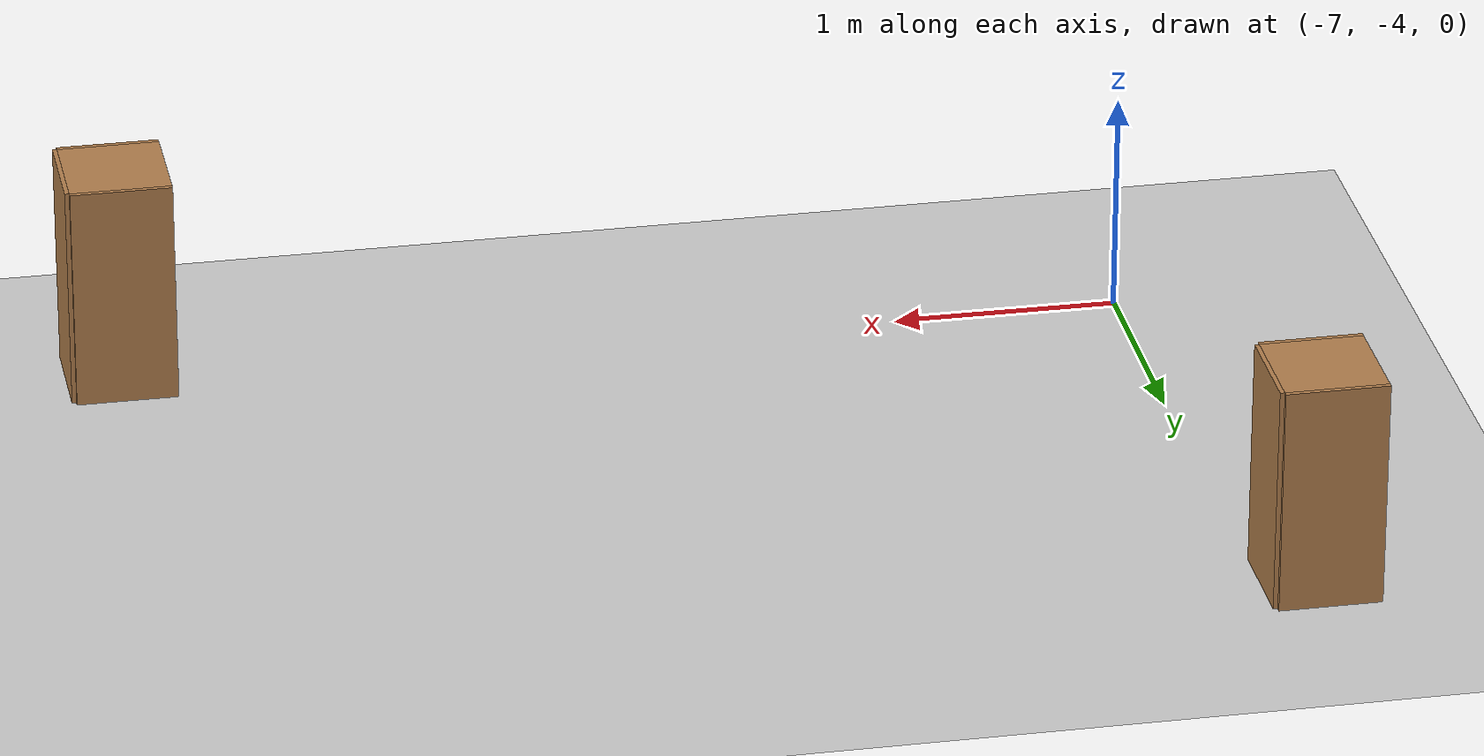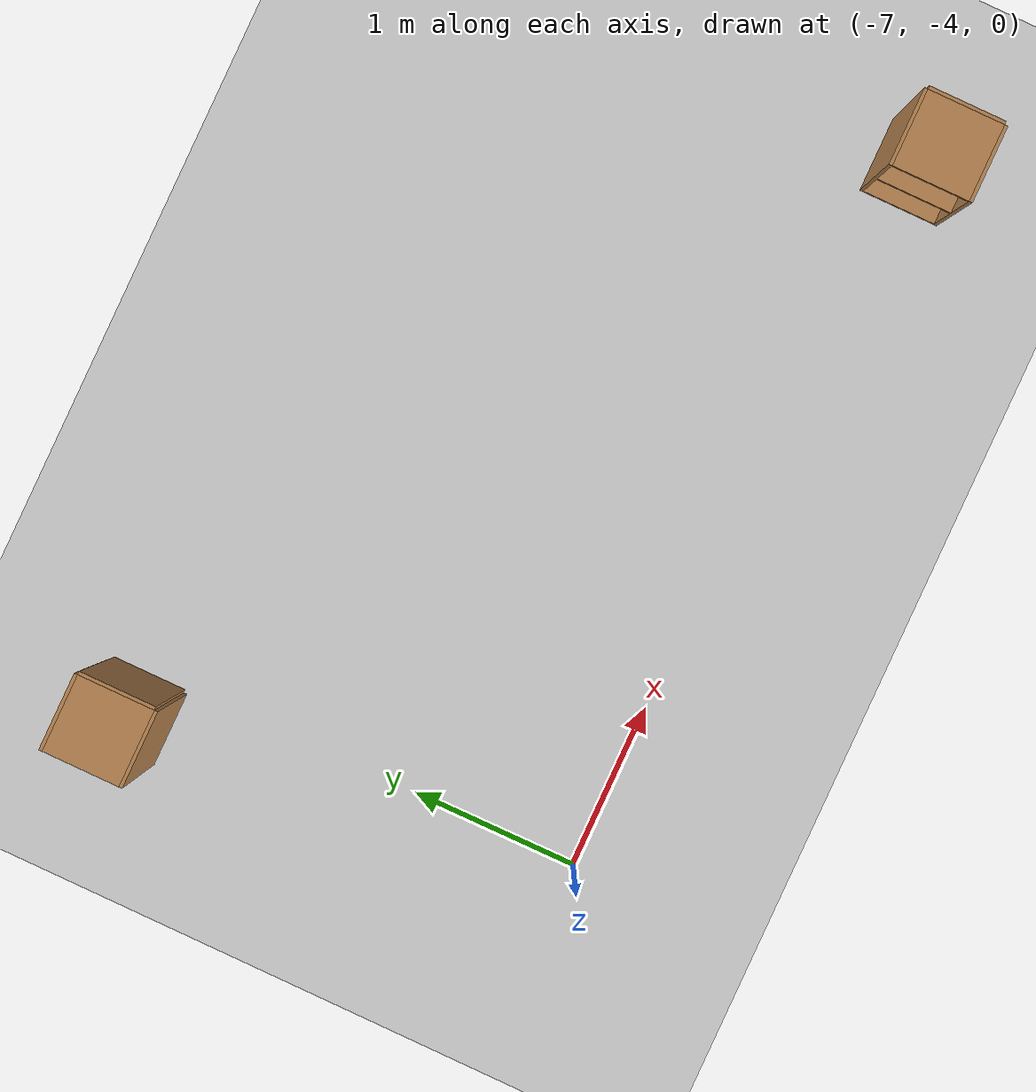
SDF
<sdf version="1.7">
 <world name="default">
  <model name="ground_plane">
   <static>1</static>
   <link name="link">
    <collision name="collision">
     <geometry><plane><normal>0 0 1</normal><size>100 100</size></plane></geometry>
     <surface>
      <contact><collide_bitmask>65535</collide_bitmask></contact>
      <friction><ode><mu>100</mu><mu2>50</mu2></ode></friction>
     </surface>
    </collision>
    <visual name="visual">
     <cast_shadows>0</cast_shadows>
     <geometry><plane><normal>0 0 1</normal><size>100 100</size></plane></geometry>
     <material>
      <script><uri>file://media/materials/scripts/gazebo.material</uri><name>Gazebo/Grey</name></script>
     </material>
    </visual>
   </link>
  </model>
  <model name="cabinet_wood_0">
   <link name="cabinet_bottom_plate">
    <inertial>
     <pose>0 0 -1 0 -0 0</pose>
     <inertia><ixx>2.05</ixx><ixy>0</ixy><ixz>0</ixz><iyy>2.05</iyy><iyz>0</iyz><izz>2.05</izz></inertia>
     <mass>25</mass>
    </inertial>
    <velocity_decay><linear>0</linear><angular>0</angular></velocity_decay>
    <visual name="cabinet_bottom_plate_geom_cabinet_back_plate_visual">
     <pose>0.235 0 0.51 0 -0 0</pose>
     <geometry><box><size>0.02 0.45 1.02</size></box></geometry>
     <material>
      <script><uri>file://media/materials/scripts/gazebo.material</uri><name>Gazebo/Wood</name></script>
      <shader type="pixel"/>
     </material>
    </visual>
    <visual name="cabinet_bottom_plate_geom_visual">
     <pose>0 0 0.01 0 -0 0</pose>
     <geometry><box><size>0.45 0.45 0.02</size></box></geometry>
     <material>
      <script><uri>file://media/materials/scripts/gazebo.material</uri><name>Gazebo/Wood</name></script>
      <shader type="pixel"/>
     </material>
    </visual>
    <visual name="cabinet_bottom_plate_geom_cabinet_left_plate_visual">
     <pose>0 0.235 0.51 0 -0 0</pose>
     <geometry><box><size>0.45 0.02 1.02</size></box></geometry>
     <material>
      <script><uri>file://media/materials/scripts/gazebo.material</uri><name>Gazebo/Wood</name></script>
      <shader type="pixel"/>
     </material>
    </visual>
    <visual name="cabinet_bottom_plate_geom_cabinet_middle_plate_visual">
     <pose>0 0 0.51 0 -0 0</pose>
     <geometry><box><size>0.45 0.45 0.02</size></box></geometry>
     <material>
      <script><uri>file://media/materials/scripts/gazebo.material</uri><name>Gazebo/Wood</name></script>
      <shader type="pixel"/>
     </material>
    </visual>
    <visual name="cabinet_bottom_plate_geom_cabinet_right_plate_visual">
     <pose>0 -0.235 0.51 0 -0 0</pose>
     <geometry><box><size>0.45 0.02 1.02</size></box></geometry>
     <material>
      <script><uri>file://media/materials/scripts/gazebo.material</uri><name>Gazebo/Wood</name></script>
      <shader type="pixel"/>
     </material>
    </visual>
    <visual name="cabinet_bottom_plate_geom_cabinet_top_plate_visual">
     <pose>0 0 1.01 0 -0 0</pose>
     <geometry><box><size>0.45 0.45 0.02</size></box></geometry>
     <material>
      <script><uri>file://media/materials/scripts/gazebo.material</uri><name>Gazebo/Wood</name></script>
      <shader type="pixel"/>
     </material>
    </visual>
    <collision name="cabinet_bottom_plate_geom">
     <pose>0 0 0.01 0 -0 0</pose>
     <geometry><box><size>0.45 0.45 0.02</size></box></geometry>
     <surface>
      <friction>
       <ode><mu>1</mu><mu2>1</mu2><fdir1>0 0 0</fdir1><slip1>0</slip1><slip2>0</slip2></ode>
       <torsional>
        <coefficient>1</coefficient>
        <patch_radius>0</patch_radius>
        <surface_radius>0</surface_radius>
        <use_patch_radius>1</use_patch_radius>
        <ode><slip>0</slip></ode>
       </torsional>
      </friction>
      <bounce><restitution_coefficient>0</restitution_coefficient><threshold>1e+06</threshold></bounce>
      <contact>
       <collide_without_contact>0</collide_without_contact>
       <collide_without_contact_bitmask>1</collide_without_contact_bitmask>
       <collide_bitmask>1</collide_bitmask>
       <ode>
        <soft_cfm>0</soft_cfm>
        <soft_erp>0.2</soft_erp>
        <kp>1e+13</kp>
        <kd>1</kd>
        <max_vel>0.01</max_vel>
        <min_depth>0</min_depth>
       </ode>
       <bullet>
        <split_impulse>1</split_impulse>
        <split_impulse_penetration_threshold>-0.01</split_impulse_penetration_threshold>
        <soft_cfm>0</soft_cfm>
        <soft_erp>0.2</soft_erp>
        <kp>1e+13</kp>
        <kd>1</kd>
       </bullet>
      </contact>
     </surface>
    </collision>
    <collision name="cabinet_bottom_plate_geom_cabinet_back_plate">
     <pose>0.235 0 0.51 0 -0 0</pose>
     <geometry><box><size>0.02 0.45 1.02</size></box></geometry>
     <surface>
      <friction>
       <ode><mu>1</mu><mu2>1</mu2><fdir1>0 0 0</fdir1><slip1>0</slip1><slip2>0</slip2></ode>
       <torsional>
        <coefficient>1</coefficient>
        <patch_radius>0</patch_radius>
        <surface_radius>0</surface_radius>
        <use_patch_radius>1</use_patch_radius>
        <ode><slip>0</slip></ode>
       </torsional>
      </friction>
      <bounce><restitution_coefficient>0</restitution_coefficient><threshold>1e+06</threshold></bounce>
      <contact>
       <collide_without_contact>0</collide_without_contact>
       <collide_without_contact_bitmask>1</collide_without_contact_bitmask>
       <collide_bitmask>1</collide_bitmask>
       <ode>
        <soft_cfm>0</soft_cfm>
        <soft_erp>0.2</soft_erp>
        <kp>1e+13</kp>
        <kd>1</kd>
        <max_vel>0.01</max_vel>
        <min_depth>0</min_depth>
       </ode>
       <bullet>
        <split_impulse>1</split_impulse>
        <split_impulse_penetration_threshold>-0.01</split_impulse_penetration_threshold>
        <soft_cfm>0</soft_cfm>
        <soft_erp>0.2</soft_erp>
        <kp>1e+13</kp>
        <kd>1</kd>
       </bullet>
      </contact>
     </surface>
    </collision>
    <collision name="cabinet_bottom_plate_geom_cabinet_left_plate">
     <pose>0 0.235 0.51 0 -0 0</pose>
     <geometry><box><size>0.45 0.02 1.02</size></box></geometry>
     <surface>
      <friction>
       <ode><mu>1</mu><mu2>1</mu2><fdir1>0 0 0</fdir1><slip1>0</slip1><slip2>0</slip2></ode>
       <torsional>
        <coefficient>1</coefficient>
        <patch_radius>0</patch_radius>
        <surface_radius>0</surface_radius>
        <use_patch_radius>1</use_patch_radius>
        <ode><slip>0</slip></ode>
       </torsional>
      </friction>
      <bounce><restitution_coefficient>0</restitution_coefficient><threshold>1e+06</threshold></bounce>
      <contact>
       <collide_without_contact>0</collide_without_contact>
       <collide_without_contact_bitmask>1</collide_without_contact_bitmask>
       <collide_bitmask>1</collide_bitmask>
       <ode>
        <soft_cfm>0</soft_cfm>
        <soft_erp>0.2</soft_erp>
        <kp>1e+13</kp>
        <kd>1</kd>
        <max_vel>0.01</max_vel>
        <min_depth>0</min_depth>
       </ode>
       <bullet>
        <split_impulse>1</split_impulse>
        <split_impulse_penetration_threshold>-0.01</split_impulse_penetration_threshold>
        <soft_cfm>0</soft_cfm>
        <soft_erp>0.2</soft_erp>
        <kp>1e+13</kp>
        <kd>1</kd>
       </bullet>
      </contact>
     </surface>
    </collision>
    <collision name="cabinet_bottom_plate_geom_cabinet_right_plate">
     <pose>0 -0.235 0.51 0 -0 0</pose>
     <geometry><box><size>0.45 0.02 1.02</size></box></geometry>
     <surface>
      <friction>
       <ode><mu>1</mu><mu2>1</mu2><fdir1>0 0 0</fdir1><slip1>0</slip1><slip2>0</slip2></ode>
       <torsional>
        <coefficient>1</coefficient>
        <patch_radius>0</patch_radius>
        <surface_radius>0</surface_radius>
        <use_patch_radius>1</use_patch_radius>
        <ode><slip>0</slip></ode>
       </torsional>
      </friction>
      <bounce><restitution_coefficient>0</restitution_coefficient><threshold>1e+06</threshold></bounce>
      <contact>
       <collide_without_contact>0</collide_without_contact>
       <collide_without_contact_bitmask>1</collide_without_contact_bitmask>
       <collide_bitmask>1</collide_bitmask>
       <ode>
        <soft_cfm>0</soft_cfm>
        <soft_erp>0.2</soft_erp>
        <kp>1e+13</kp>
        <kd>1</kd>
        <max_vel>0.01</max_vel>
        <min_depth>0</min_depth>
       </ode>
       <bullet>
        <split_impulse>1</split_impulse>
        <split_impulse_penetration_threshold>-0.01</split_impulse_penetration_threshold>
        <soft_cfm>0</soft_cfm>
        <soft_erp>0.2</soft_erp>
        <kp>1e+13</kp>
        <kd>1</kd>
       </bullet>
      </contact>
     </surface>
    </collision>
    <collision name="cabinet_bottom_plate_geom_cabinet_middle_plate">
     <pose>0 0 0.51 0 -0 0</pose>
     <geometry><box><size>0.45 0.45 0.02</size></box></geometry>
     <surface>
      <friction>
       <ode><mu>1</mu><mu2>1</mu2><fdir1>0 0 0</fdir1><slip1>0</slip1><slip2>0</slip2></ode>
       <torsional>
        <coefficient>1</coefficient>
        <patch_radius>0</patch_radius>
        <surface_radius>0</surface_radius>
        <use_patch_radius>1</use_patch_radius>
        <ode><slip>0</slip></ode>
       </torsional>
      </friction>
      <bounce><restitution_coefficient>0</restitution_coefficient><threshold>1e+06</threshold></bounce>
      <contact>
       <collide_without_contact>0</collide_without_contact>
       <collide_without_contact_bitmask>1</collide_without_contact_bitmask>
       <collide_bitmask>1</collide_bitmask>
       <ode>
        <soft_cfm>0</soft_cfm>
        <soft_erp>0.2</soft_erp>
        <kp>1e+13</kp>
        <kd>1</kd>
        <max_vel>0.01</max_vel>
        <min_depth>0</min_depth>
       </ode>
       <bullet>
        <split_impulse>1</split_impulse>
        <split_impulse_penetration_threshold>-0.01</split_impulse_penetration_threshold>
        <soft_cfm>0</soft_cfm>
        <soft_erp>0.2</soft_erp>
        <kp>1e+13</kp>
        <kd>1</kd>
       </bullet>
      </contact>
     </surface>
    </collision>
    <collision name="cabinet_bottom_plate_geom_cabinet_top_plate">
     <pose>0 0 1.01 0 -0 0</pose>
     <geometry><box><size>0.45 0.45 0.02</size></box></geometry>
     <surface>
      <friction>
       <ode><mu>1</mu><mu2>1</mu2><fdir1>0 0 0</fdir1><slip1>0</slip1><slip2>0</slip2></ode>
       <torsional>
        <coefficient>1</coefficient>
        <patch_radius>0</patch_radius>
        <surface_radius>0</surface_radius>
        <use_patch_radius>1</use_patch_radius>
        <ode><slip>0</slip></ode>
       </torsional>
      </friction>
      <bounce><restitution_coefficient>0</restitution_coefficient><threshold>1e+06</threshold></bounce>
      <contact>
       <collide_without_contact>0</collide_without_contact>
       <collide_without_contact_bitmask>1</collide_without_contact_bitmask>
       <collide_bitmask>1</collide_bitmask>
       <ode>
        <soft_cfm>0</soft_cfm>
        <soft_erp>0.2</soft_erp>
        <kp>1e+13</kp>
        <kd>1</kd>
        <max_vel>0.01</max_vel>
        <min_depth>0</min_depth>
       </ode>
       <bullet>
        <split_impulse>1</split_impulse>
        <split_impulse_penetration_threshold>-0.01</split_impulse_penetration_threshold>
        <soft_cfm>0</soft_cfm>
        <soft_erp>0.2</soft_erp>
        <kp>1e+13</kp>
        <kd>1</kd>
       </bullet>
      </contact>
     </surface>
    </collision>
   </link>
   <static>1</static>
   <pose>-7.26709 -1.31832 0 0 -0 0</pose>
  </model>
  <model name="cabinet_wood_1">
   <link name="cabinet_bottom_plate">
    <inertial>
     <pose>0 0 -1 0 -0 0</pose>
     <inertia><ixx>2.05</ixx><ixy>0</ixy><ixz>0</ixz><iyy>2.05</iyy><iyz>0</iyz><izz>2.05</izz></inertia>
     <mass>25</mass>
    </inertial>
    <velocity_decay><linear>0</linear><angular>0</angular></velocity_decay>
    <visual name="cabinet_bottom_plate_geom_cabinet_back_plate_visual">
     <pose>0.235 0 0.51 0 -0 0</pose>
     <geometry><box><size>0.02 0.45 1.02</size></box></geometry>
     <material>
      <script><uri>file://media/materials/scripts/gazebo.material</uri><name>Gazebo/Wood</name></script>
      <shader type="pixel"/>
     </material>
    </visual>
    <visual name="cabinet_bottom_plate_geom_visual">
     <pose>0 0 0.01 0 -0 0</pose>
     <geometry><box><size>0.45 0.45 0.02</size></box></geometry>
     <material>
      <script><uri>file://media/materials/scripts/gazebo.material</uri><name>Gazebo/Wood</name></script>
      <shader type="pixel"/>
     </material>
    </visual>
    <visual name="cabinet_bottom_plate_geom_cabinet_left_plate_visual">
     <pose>0 0.235 0.51 0 -0 0</pose>
     <geometry><box><size>0.45 0.02 1.02</size></box></geometry>
     <material>
      <script><uri>file://media/materials/scripts/gazebo.material</uri><name>Gazebo/Wood</name></script>
      <shader type="pixel"/>
     </material>
    </visual>
    <visual name="cabinet_bottom_plate_geom_cabinet_middle_plate_visual">
     <pose>0 0 0.51 0 -0 0</pose>
     <geometry><box><size>0.45 0.45 0.02</size></box></geometry>
     <material>
      <script><uri>file://media/materials/scripts/gazebo.material</uri><name>Gazebo/Wood</name></script>
      <shader type="pixel"/>
     </material>
    </visual>
    <visual name="cabinet_bottom_plate_geom_cabinet_right_plate_visual">
     <pose>0 -0.235 0.51 0 -0 0</pose>
     <geometry><box><size>0.45 0.02 1.02</size></box></geometry>
     <material>
      <script><uri>file://media/materials/scripts/gazebo.material</uri><name>Gazebo/Wood</name></script>
      <shader type="pixel"/>
     </material>
    </visual>
    <visual name="cabinet_bottom_plate_geom_cabinet_top_plate_visual">
     <pose>0 0 1.01 0 -0 0</pose>
     <geometry><box><size>0.45 0.45 0.02</size></box></geometry>
     <material>
      <script><uri>file://media/materials/scripts/gazebo.material</uri><name>Gazebo/Wood</name></script>
      <shader type="pixel"/>
     </material>
    </visual>
    <collision name="cabinet_bottom_plate_geom">
     <pose>0 0 0.01 0 -0 0</pose>
     <geometry><box><size>0.45 0.45 0.02</size></box></geometry>
     <surface>
      <friction>
       <ode><mu>1</mu><mu2>1</mu2><fdir1>0 0 0</fdir1><slip1>0</slip1><slip2>0</slip2></ode>
       <torsional>
        <coefficient>1</coefficient>
        <patch_radius>0</patch_radius>
        <surface_radius>0</surface_radius>
        <use_patch_radius>1</use_patch_radius>
        <ode><slip>0</slip></ode>
       </torsional>
      </friction>
      <bounce><restitution_coefficient>0</restitution_coefficient><threshold>1e+06</threshold></bounce>
      <contact>
       <collide_without_contact>0</collide_without_contact>
       <collide_without_contact_bitmask>1</collide_without_contact_bitmask>
       <collide_bitmask>1</collide_bitmask>
       <ode>
        <soft_cfm>0</soft_cfm>
        <soft_erp>0.2</soft_erp>
        <kp>1e+13</kp>
        <kd>1</kd>
        <max_vel>0.01</max_vel>
        <min_depth>0</min_depth>
       </ode>
       <bullet>
        <split_impulse>1</split_impulse>
        <split_impulse_penetration_threshold>-0.01</split_impulse_penetration_threshold>
        <soft_cfm>0</soft_cfm>
        <soft_erp>0.2</soft_erp>
        <kp>1e+13</kp>
        <kd>1</kd>
       </bullet>
      </contact>
     </surface>
    </collision>
    <collision name="cabinet_bottom_plate_geom_cabinet_back_plate">
     <pose>0.235 0 0.51 0 -0 0</pose>
     <geometry><box><size>0.02 0.45 1.02</size></box></geometry>
     <surface>
      <friction>
       <ode><mu>1</mu><mu2>1</mu2><fdir1>0 0 0</fdir1><slip1>0</slip1><slip2>0</slip2></ode>
       <torsional>
        <coefficient>1</coefficient>
        <patch_radius>0</patch_radius>
        <surface_radius>0</surface_radius>
        <use_patch_radius>1</use_patch_radius>
        <ode><slip>0</slip></ode>
       </torsional>
      </friction>
      <bounce><restitution_coefficient>0</restitution_coefficient><threshold>1e+06</threshold></bounce>
      <contact>
       <collide_without_contact>0</collide_without_contact>
       <collide_without_contact_bitmask>1</collide_without_contact_bitmask>
       <collide_bitmask>1</collide_bitmask>
       <ode>
        <soft_cfm>0</soft_cfm>
        <soft_erp>0.2</soft_erp>
        <kp>1e+13</kp>
        <kd>1</kd>
        <max_vel>0.01</max_vel>
        <min_depth>0</min_depth>
       </ode>
       <bullet>
        <split_impulse>1</split_impulse>
        <split_impulse_penetration_threshold>-0.01</split_impulse_penetration_threshold>
        <soft_cfm>0</soft_cfm>
        <soft_erp>0.2</soft_erp>
        <kp>1e+13</kp>
        <kd>1</kd>
       </bullet>
      </contact>
     </surface>
    </collision>
    <collision name="cabinet_bottom_plate_geom_cabinet_left_plate">
     <pose>0 0.235 0.51 0 -0 0</pose>
     <geometry><box><size>0.45 0.02 1.02</size></box></geometry>
     <surface>
      <friction>
       <ode><mu>1</mu><mu2>1</mu2><fdir1>0 0 0</fdir1><slip1>0</slip1><slip2>0</slip2></ode>
       <torsional>
        <coefficient>1</coefficient>
        <patch_radius>0</patch_radius>
        <surface_radius>0</surface_radius>
        <use_patch_radius>1</use_patch_radius>
        <ode><slip>0</slip></ode>
       </torsional>
      </friction>
      <bounce><restitution_coefficient>0</restitution_coefficient><threshold>1e+06</threshold></bounce>
      <contact>
       <collide_without_contact>0</collide_without_contact>
       <collide_without_contact_bitmask>1</collide_without_contact_bitmask>
       <collide_bitmask>1</collide_bitmask>
       <ode>
        <soft_cfm>0</soft_cfm>
        <soft_erp>0.2</soft_erp>
        <kp>1e+13</kp>
        <kd>1</kd>
        <max_vel>0.01</max_vel>
        <min_depth>0</min_depth>
       </ode>
       <bullet>
        <split_impulse>1</split_impulse>
        <split_impulse_penetration_threshold>-0.01</split_impulse_penetration_threshold>
        <soft_cfm>0</soft_cfm>
        <soft_erp>0.2</soft_erp>
        <kp>1e+13</kp>
        <kd>1</kd>
       </bullet>
      </contact>
     </surface>
    </collision>
    <collision name="cabinet_bottom_plate_geom_cabinet_right_plate">
     <pose>0 -0.235 0.51 0 -0 0</pose>
     <geometry><box><size>0.45 0.02 1.02</size></box></geometry>
     <surface>
      <friction>
       <ode><mu>1</mu><mu2>1</mu2><fdir1>0 0 0</fdir1><slip1>0</slip1><slip2>0</slip2></ode>
       <torsional>
        <coefficient>1</coefficient>
        <patch_radius>0</patch_radius>
        <surface_radius>0</surface_radius>
        <use_patch_radius>1</use_patch_radius>
        <ode><slip>0</slip></ode>
       </torsional>
      </friction>
      <bounce><restitution_coefficient>0</restitution_coefficient><threshold>1e+06</threshold></bounce>
      <contact>
       <collide_without_contact>0</collide_without_contact>
       <collide_without_contact_bitmask>1</collide_without_contact_bitmask>
       <collide_bitmask>1</collide_bitmask>
       <ode>
        <soft_cfm>0</soft_cfm>
        <soft_erp>0.2</soft_erp>
        <kp>1e+13</kp>
        <kd>1</kd>
        <max_vel>0.01</max_vel>
        <min_depth>0</min_depth>
       </ode>
       <bullet>
        <split_impulse>1</split_impulse>
        <split_impulse_penetration_threshold>-0.01</split_impulse_penetration_threshold>
        <soft_cfm>0</soft_cfm>
        <soft_erp>0.2</soft_erp>
        <kp>1e+13</kp>
        <kd>1</kd>
       </bullet>
      </contact>
     </surface>
    </collision>
    <collision name="cabinet_bottom_plate_geom_cabinet_middle_plate">
     <pose>0 0 0.51 0 -0 0</pose>
     <geometry><box><size>0.45 0.45 0.02</size></box></geometry>
     <surface>
      <friction>
       <ode><mu>1</mu><mu2>1</mu2><fdir1>0 0 0</fdir1><slip1>0</slip1><slip2>0</slip2></ode>
       <torsional>
        <coefficient>1</coefficient>
        <patch_radius>0</patch_radius>
        <surface_radius>0</surface_radius>
        <use_patch_radius>1</use_patch_radius>
        <ode><slip>0</slip></ode>
       </torsional>
      </friction>
      <bounce><restitution_coefficient>0</restitution_coefficient><threshold>1e+06</threshold></bounce>
      <contact>
       <collide_without_contact>0</collide_without_contact>
       <collide_without_contact_bitmask>1</collide_without_contact_bitmask>
       <collide_bitmask>1</collide_bitmask>
       <ode>
        <soft_cfm>0</soft_cfm>
        <soft_erp>0.2</soft_erp>
        <kp>1e+13</kp>
        <kd>1</kd>
        <max_vel>0.01</max_vel>
        <min_depth>0</min_depth>
       </ode>
       <bullet>
        <split_impulse>1</split_impulse>
        <split_impulse_penetration_threshold>-0.01</split_impulse_penetration_threshold>
        <soft_cfm>0</soft_cfm>
        <soft_erp>0.2</soft_erp>
        <kp>1e+13</kp>
        <kd>1</kd>
       </bullet>
      </contact>
     </surface>
    </collision>
    <collision name="cabinet_bottom_plate_geom_cabinet_top_plate">
     <pose>0 0 1.01 0 -0 0</pose>
     <geometry><box><size>0.45 0.45 0.02</size></box></geometry>
     <surface>
      <friction>
       <ode><mu>1</mu><mu2>1</mu2><fdir1>0 0 0</fdir1><slip1>0</slip1><slip2>0</slip2></ode>
       <torsional>
        <coefficient>1</coefficient>
        <patch_radius>0</patch_radius>
        <surface_radius>0</surface_radius>
        <use_patch_radius>1</use_patch_radius>
        <ode><slip>0</slip></ode>
       </torsional>
      </friction>
      <bounce><restitution_coefficient>0</restitution_coefficient><threshold>1e+06</threshold></bounce>
      <contact>
       <collide_without_contact>0</collide_without_contact>
       <collide_without_contact_bitmask>1</collide_without_contact_bitmask>
       <collide_bitmask>1</collide_bitmask>
       <ode>
        <soft_cfm>0</soft_cfm>
        <soft_erp>0.2</soft_erp>
        <kp>1e+13</kp>
        <kd>1</kd>
        <max_vel>0.01</max_vel>
        <min_depth>0</min_depth>
       </ode>
       <bullet>
        <split_impulse>1</split_impulse>
        <split_impulse_penetration_threshold>-0.01</split_impulse_penetration_threshold>
        <soft_cfm>0</soft_cfm>
        <soft_erp>0.2</soft_erp>
        <kp>1e+13</kp>
        <kd>1</kd>
       </bullet>
      </contact>
     </surface>
    </collision>
   </link>
   <static>1</static>
   <pose>-2.53593 -4.1049 0 0 -0 0</pose>
  </model>
 </world>
</sdf>
